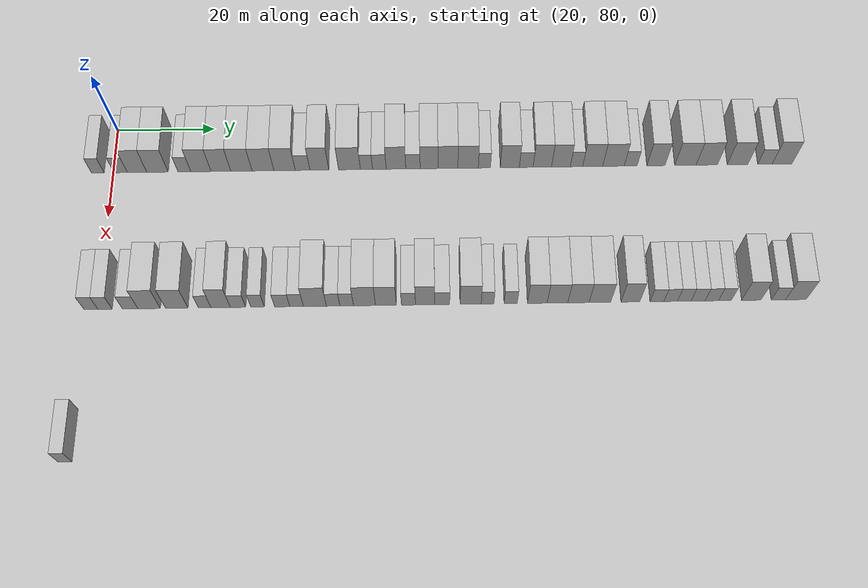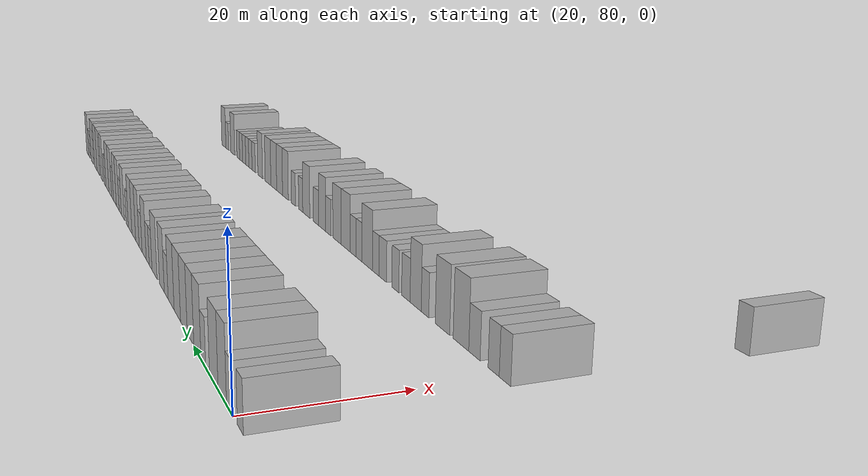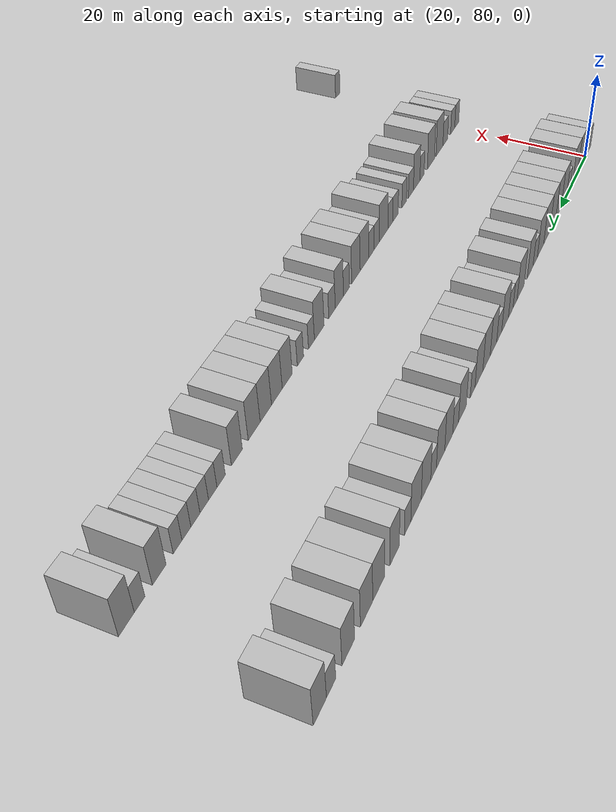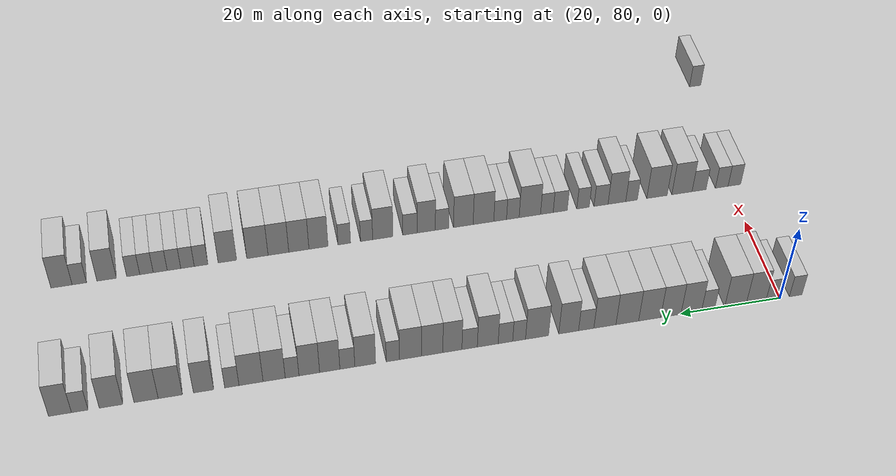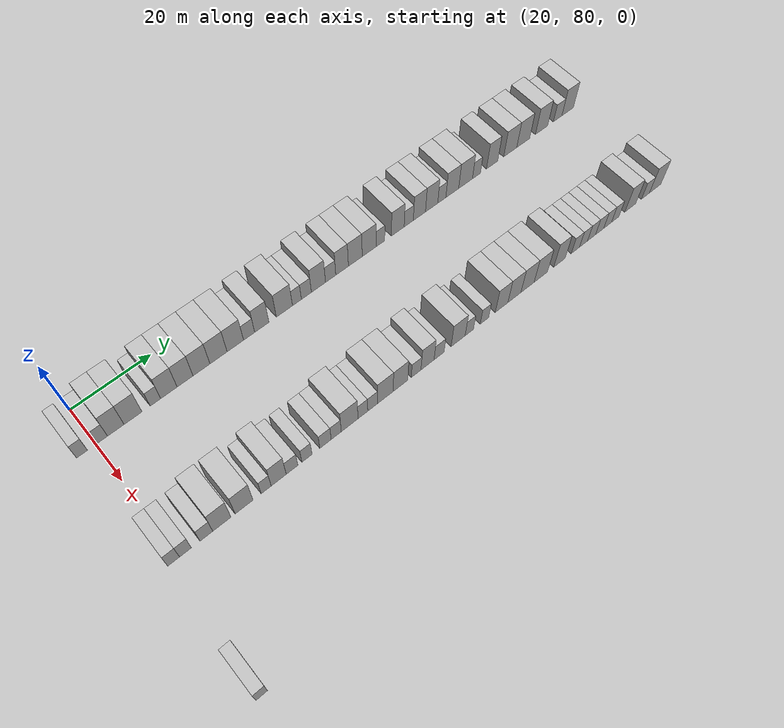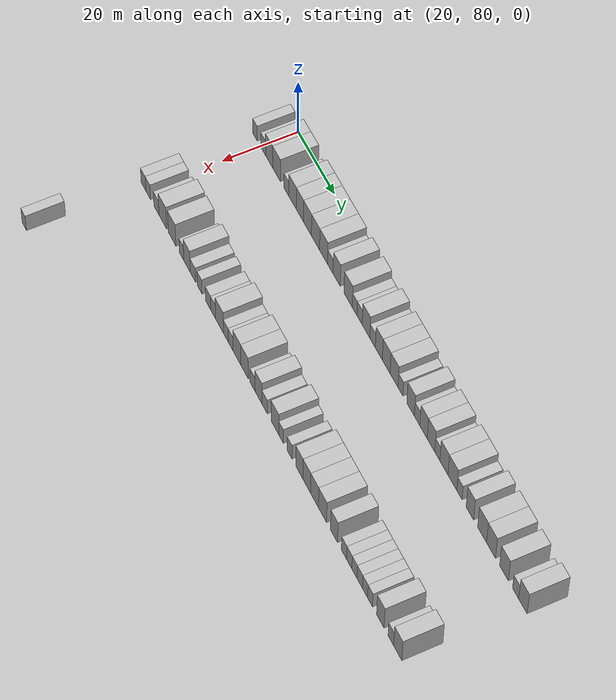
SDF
<sdf version="1.6">
 <world name="default">
  <model name="building_128">
   <static>1</static>
   <pose>25.0000 76.8793 0 0.000000 0.000000 0.000000</pose>
   <link name="link">
    <pose>0 0 3.00 0 0 0</pose>
    <collision name="collision"><geometry><box><size>10.0000 2.5659 6.0000</size></box></geometry></collision>
    <visual name="visual">
     <cast_shadows>0</cast_shadows>
     <geometry><box><size>10.0000 2.5659 6.0000</size></box></geometry>
     <material>
      <script>
       <uri>model://HANNAS_wall/materials/scripts</uri>
       <uri>model://HANNAS_wall/materials/textures</uri>
       <name>vrc/HANNAS_wall</name>
      </script>
     </material>
    </visual>
   </link>
  </model>
  <model name="building_129">
   <static>1</static>
   <pose>25.0000 81.5273 0 0.000000 0.000000 0.000000</pose>
   <link name="link">
    <pose>0 0 3.00 0 0 0</pose>
    <collision name="collision"><geometry><box><size>10.0000 2.7301 6.0000</size></box></geometry></collision>
    <visual name="visual">
     <cast_shadows>0</cast_shadows>
     <geometry><box><size>10.0000 2.7301 6.0000</size></box></geometry>
     <material>
      <script>
       <uri>model://HANNAS_wall/materials/scripts</uri>
       <uri>model://HANNAS_wall/materials/textures</uri>
       <name>vrc/HANNAS_wall</name>
      </script>
     </material>
    </visual>
   </link>
  </model>
  <model name="building_130">
   <static>1</static>
   <pose>25.0000 84.8800 0 0.000000 0.000000 0.000000</pose>
   <link name="link">
    <pose>0 0 4.50 0 0 0</pose>
    <collision name="collision"><geometry><box><size>10.0000 3.9753 9.0000</size></box></geometry></collision>
    <visual name="visual">
     <cast_shadows>0</cast_shadows>
     <geometry><box><size>10.0000 3.9753 9.0000</size></box></geometry>
     <material>
      <script>
       <uri>model://HANNAS_wall/materials/scripts</uri>
       <uri>model://HANNAS_wall/materials/textures</uri>
       <name>vrc/HANNAS_wall</name>
      </script>
     </material>
    </visual>
   </link>
  </model>
  <model name="building_131">
   <static>1</static>
   <pose>25.0000 89.0456 0 0.000000 0.000000 0.000000</pose>
   <link name="link">
    <pose>0 0 4.50 0 0 0</pose>
    <collision name="collision"><geometry><box><size>10.0000 4.3560 9.0000</size></box></geometry></collision>
    <visual name="visual">
     <cast_shadows>0</cast_shadows>
     <geometry><box><size>10.0000 4.3560 9.0000</size></box></geometry>
     <material>
      <script>
       <uri>model://HANNAS_wall/materials/scripts</uri>
       <uri>model://HANNAS_wall/materials/textures</uri>
       <name>vrc/HANNAS_wall</name>
      </script>
     </material>
    </visual>
   </link>
  </model>
  <model name="building_132">
   <static>1</static>
   <pose>25.0000 94.5323 0 0.000000 0.000000 0.000000</pose>
   <link name="link">
    <pose>0 0 3.00 0 0 0</pose>
    <collision name="collision"><geometry><box><size>10.0000 2.6174 6.0000</size></box></geometry></collision>
    <visual name="visual">
     <cast_shadows>0</cast_shadows>
     <geometry><box><size>10.0000 2.6174 6.0000</size></box></geometry>
     <material>
      <script>
       <uri>model://HANNAS_wall/materials/scripts</uri>
       <uri>model://HANNAS_wall/materials/textures</uri>
       <name>vrc/HANNAS_wall</name>
      </script>
     </material>
    </visual>
   </link>
  </model>
  <model name="building_133">
   <static>1</static>
   <pose>25.0000 97.8981 0 0.000000 0.000000 0.000000</pose>
   <link name="link">
    <pose>0 0 4.50 0 0 0</pose>
    <collision name="collision"><geometry><box><size>10.0000 4.1141 9.0000</size></box></geometry></collision>
    <visual name="visual">
     <cast_shadows>0</cast_shadows>
     <geometry><box><size>10.0000 4.1141 9.0000</size></box></geometry>
     <material>
      <script>
       <uri>model://HANNAS_wall/materials/scripts</uri>
       <uri>model://HANNAS_wall/materials/textures</uri>
       <name>vrc/HANNAS_wall</name>
      </script>
     </material>
    </visual>
   </link>
  </model>
  <model name="building_134">
   <static>1</static>
   <pose>25.0000 101.9695 0 0.000000 0.000000 0.000000</pose>
   <link name="link">
    <pose>0 0 4.50 0 0 0</pose>
    <collision name="collision"><geometry><box><size>10.0000 4.0288 9.0000</size></box></geometry></collision>
    <visual name="visual">
     <cast_shadows>0</cast_shadows>
     <geometry><box><size>10.0000 4.0288 9.0000</size></box></geometry>
     <material>
      <script>
       <uri>model://HANNAS_wall/materials/scripts</uri>
       <uri>model://HANNAS_wall/materials/textures</uri>
       <name>vrc/HANNAS_wall</name>
      </script>
     </material>
    </visual>
   </link>
  </model>
  <model name="building_135">
   <static>1</static>
   <pose>25.0000 106.1614 0 0.000000 0.000000 0.000000</pose>
   <link name="link">
    <pose>0 0 4.50 0 0 0</pose>
    <collision name="collision"><geometry><box><size>10.0000 4.3549 9.0000</size></box></geometry></collision>
    <visual name="visual">
     <cast_shadows>0</cast_shadows>
     <geometry><box><size>10.0000 4.3549 9.0000</size></box></geometry>
     <material>
      <script>
       <uri>model://HANNAS_wall/materials/scripts</uri>
       <uri>model://HANNAS_wall/materials/textures</uri>
       <name>vrc/HANNAS_wall</name>
      </script>
     </material>
    </visual>
   </link>
  </model>
  <model name="building_136">
   <static>1</static>
   <pose>25.0000 110.5706 0 0.000000 0.000000 0.000000</pose>
   <link name="link">
    <pose>0 0 4.50 0 0 0</pose>
    <collision name="collision"><geometry><box><size>10.0000 4.4637 9.0000</size></box></geometry></collision>
    <visual name="visual">
     <cast_shadows>0</cast_shadows>
     <geometry><box><size>10.0000 4.4637 9.0000</size></box></geometry>
     <material>
      <script>
       <uri>model://HANNAS_wall/materials/scripts</uri>
       <uri>model://HANNAS_wall/materials/textures</uri>
       <name>vrc/HANNAS_wall</name>
      </script>
     </material>
    </visual>
   </link>
  </model>
  <model name="building_137">
   <static>1</static>
   <pose>25.0000 114.9751 0 0.000000 0.000000 0.000000</pose>
   <link name="link">
    <pose>0 0 4.50 0 0 0</pose>
    <collision name="collision"><geometry><box><size>10.0000 4.3452 9.0000</size></box></geometry></collision>
    <visual name="visual">
     <cast_shadows>0</cast_shadows>
     <geometry><box><size>10.0000 4.3452 9.0000</size></box></geometry>
     <material>
      <script>
       <uri>model://HANNAS_wall/materials/scripts</uri>
       <uri>model://HANNAS_wall/materials/textures</uri>
       <name>vrc/HANNAS_wall</name>
      </script>
     </material>
    </visual>
   </link>
  </model>
  <model name="building_138">
   <static>1</static>
   <pose>25.0000 118.6404 0 0.000000 0.000000 0.000000</pose>
   <link name="link">
    <pose>0 0 3.00 0 0 0</pose>
    <collision name="collision"><geometry><box><size>10.0000 2.9855 6.0000</size></box></geometry></collision>
    <visual name="visual">
     <cast_shadows>0</cast_shadows>
     <geometry><box><size>10.0000 2.9855 6.0000</size></box></geometry>
     <material>
      <script>
       <uri>model://HANNAS_wall/materials/scripts</uri>
       <uri>model://HANNAS_wall/materials/textures</uri>
       <name>vrc/HANNAS_wall</name>
      </script>
     </material>
    </visual>
   </link>
  </model>
  <model name="building_139">
   <static>1</static>
   <pose>25.0000 122.0575 0 0.000000 0.000000 0.000000</pose>
   <link name="link">
    <pose>0 0 4.50 0 0 0</pose>
    <collision name="collision"><geometry><box><size>10.0000 3.8487 9.0000</size></box></geometry></collision>
    <visual name="visual">
     <cast_shadows>0</cast_shadows>
     <geometry><box><size>10.0000 3.8487 9.0000</size></box></geometry>
     <material>
      <script>
       <uri>model://HANNAS_wall/materials/scripts</uri>
       <uri>model://HANNAS_wall/materials/textures</uri>
       <name>vrc/HANNAS_wall</name>
      </script>
     </material>
    </visual>
   </link>
  </model>
  <model name="building_140">
   <static>1</static>
   <pose>25.0000 128.2081 0 0.000000 0.000000 0.000000</pose>
   <link name="link">
    <pose>0 0 4.50 0 0 0</pose>
    <collision name="collision"><geometry><box><size>10.0000 4.4526 9.0000</size></box></geometry></collision>
    <visual name="visual">
     <cast_shadows>0</cast_shadows>
     <geometry><box><size>10.0000 4.4526 9.0000</size></box></geometry>
     <material>
      <script>
       <uri>model://HANNAS_wall/materials/scripts</uri>
       <uri>model://HANNAS_wall/materials/textures</uri>
       <name>vrc/HANNAS_wall</name>
      </script>
     </material>
    </visual>
   </link>
  </model>
  <model name="building_141">
   <static>1</static>
   <pose>25.0000 131.6753 0 0.000000 0.000000 0.000000</pose>
   <link name="link">
    <pose>0 0 3.00 0 0 0</pose>
    <collision name="collision"><geometry><box><size>10.0000 2.4817 6.0000</size></box></geometry></collision>
    <visual name="visual">
     <cast_shadows>0</cast_shadows>
     <geometry><box><size>10.0000 2.4817 6.0000</size></box></geometry>
     <material>
      <script>
       <uri>model://HANNAS_wall/materials/scripts</uri>
       <uri>model://HANNAS_wall/materials/textures</uri>
       <name>vrc/HANNAS_wall</name>
      </script>
     </material>
    </visual>
   </link>
  </model>
  <model name="building_142">
   <static>1</static>
   <pose>25.0000 134.3153 0 0.000000 0.000000 0.000000</pose>
   <link name="link">
    <pose>0 0 3.00 0 0 0</pose>
    <collision name="collision"><geometry><box><size>10.0000 2.7984 6.0000</size></box></geometry></collision>
    <visual name="visual">
     <cast_shadows>0</cast_shadows>
     <geometry><box><size>10.0000 2.7984 6.0000</size></box></geometry>
     <material>
      <script>
       <uri>model://HANNAS_wall/materials/scripts</uri>
       <uri>model://HANNAS_wall/materials/textures</uri>
       <name>vrc/HANNAS_wall</name>
      </script>
     </material>
    </visual>
   </link>
  </model>
  <model name="building_143">
   <static>1</static>
   <pose>25.0000 137.7178 0 0.000000 0.000000 0.000000</pose>
   <link name="link">
    <pose>0 0 4.50 0 0 0</pose>
    <collision name="collision"><geometry><box><size>10.0000 4.0066 9.0000</size></box></geometry></collision>
    <visual name="visual">
     <cast_shadows>0</cast_shadows>
     <geometry><box><size>10.0000 4.0066 9.0000</size></box></geometry>
     <material>
      <script>
       <uri>model://HANNAS_wall/materials/scripts</uri>
       <uri>model://HANNAS_wall/materials/textures</uri>
       <name>vrc/HANNAS_wall</name>
      </script>
     </material>
    </visual>
   </link>
  </model>
  <model name="building_144">
   <static>1</static>
   <pose>25.0000 141.1899 0 0.000000 0.000000 0.000000</pose>
   <link name="link">
    <pose>0 0 3.00 0 0 0</pose>
    <collision name="collision"><geometry><box><size>10.0000 2.9375 6.0000</size></box></geometry></collision>
    <visual name="visual">
     <cast_shadows>0</cast_shadows>
     <geometry><box><size>10.0000 2.9375 6.0000</size></box></geometry>
     <material>
      <script>
       <uri>model://HANNAS_wall/materials/scripts</uri>
       <uri>model://HANNAS_wall/materials/textures</uri>
       <name>vrc/HANNAS_wall</name>
      </script>
     </material>
    </visual>
   </link>
  </model>
  <model name="building_145">
   <static>1</static>
   <pose>25.0000 144.4862 0 0.000000 0.000000 0.000000</pose>
   <link name="link">
    <pose>0 0 4.50 0 0 0</pose>
    <collision name="collision"><geometry><box><size>10.0000 3.6550 9.0000</size></box></geometry></collision>
    <visual name="visual">
     <cast_shadows>0</cast_shadows>
     <geometry><box><size>10.0000 3.6550 9.0000</size></box></geometry>
     <material>
      <script>
       <uri>model://HANNAS_wall/materials/scripts</uri>
       <uri>model://HANNAS_wall/materials/textures</uri>
       <name>vrc/HANNAS_wall</name>
      </script>
     </material>
    </visual>
   </link>
  </model>
  <model name="building_146">
   <static>1</static>
   <pose>25.0000 148.3375 0 0.000000 0.000000 0.000000</pose>
   <link name="link">
    <pose>0 0 4.50 0 0 0</pose>
    <collision name="collision"><geometry><box><size>10.0000 4.0475 9.0000</size></box></geometry></collision>
    <visual name="visual">
     <cast_shadows>0</cast_shadows>
     <geometry><box><size>10.0000 4.0475 9.0000</size></box></geometry>
     <material>
      <script>
       <uri>model://HANNAS_wall/materials/scripts</uri>
       <uri>model://HANNAS_wall/materials/textures</uri>
       <name>vrc/HANNAS_wall</name>
      </script>
     </material>
    </visual>
   </link>
  </model>
  <model name="building_147">
   <static>1</static>
   <pose>25.0000 152.4484 0 0.000000 0.000000 0.000000</pose>
   <link name="link">
    <pose>0 0 4.50 0 0 0</pose>
    <collision name="collision"><geometry><box><size>10.0000 4.1743 9.0000</size></box></geometry></collision>
    <visual name="visual">
     <cast_shadows>0</cast_shadows>
     <geometry><box><size>10.0000 4.1743 9.0000</size></box></geometry>
     <material>
      <script>
       <uri>model://HANNAS_wall/materials/scripts</uri>
       <uri>model://HANNAS_wall/materials/textures</uri>
       <name>vrc/HANNAS_wall</name>
      </script>
     </material>
    </visual>
   </link>
  </model>
  <model name="building_148">
   <static>1</static>
   <pose>25.0000 155.7804 0 0.000000 0.000000 0.000000</pose>
   <link name="link">
    <pose>0 0 3.00 0 0 0</pose>
    <collision name="collision"><geometry><box><size>10.0000 2.4897 6.0000</size></box></geometry></collision>
    <visual name="visual">
     <cast_shadows>0</cast_shadows>
     <geometry><box><size>10.0000 2.4897 6.0000</size></box></geometry>
     <material>
      <script>
       <uri>model://HANNAS_wall/materials/scripts</uri>
       <uri>model://HANNAS_wall/materials/textures</uri>
       <name>vrc/HANNAS_wall</name>
      </script>
     </material>
    </visual>
   </link>
  </model>
  <model name="building_149">
   <static>1</static>
   <pose>25.0000 160.9747 0 0.000000 0.000000 0.000000</pose>
   <link name="link">
    <pose>0 0 4.50 0 0 0</pose>
    <collision name="collision"><geometry><box><size>10.0000 3.8990 9.0000</size></box></geometry></collision>
    <visual name="visual">
     <cast_shadows>0</cast_shadows>
     <geometry><box><size>10.0000 3.8990 9.0000</size></box></geometry>
     <material>
      <script>
       <uri>model://HANNAS_wall/materials/scripts</uri>
       <uri>model://HANNAS_wall/materials/textures</uri>
       <name>vrc/HANNAS_wall</name>
      </script>
     </material>
    </visual>
   </link>
  </model>
  <model name="building_150">
   <static>1</static>
   <pose>25.0000 164.3258 0 0.000000 0.000000 0.000000</pose>
   <link name="link">
    <pose>0 0 3.00 0 0 0</pose>
    <collision name="collision"><geometry><box><size>10.0000 2.8032 6.0000</size></box></geometry></collision>
    <visual name="visual">
     <cast_shadows>0</cast_shadows>
     <geometry><box><size>10.0000 2.8032 6.0000</size></box></geometry>
     <material>
      <script>
       <uri>model://HANNAS_wall/materials/scripts</uri>
       <uri>model://HANNAS_wall/materials/textures</uri>
       <name>vrc/HANNAS_wall</name>
      </script>
     </material>
    </visual>
   </link>
  </model>
  <model name="building_151">
   <static>1</static>
   <pose>25.0000 167.6176 0 0.000000 0.000000 0.000000</pose>
   <link name="link">
    <pose>0 0 4.50 0 0 0</pose>
    <collision name="collision"><geometry><box><size>10.0000 3.7804 9.0000</size></box></geometry></collision>
    <visual name="visual">
     <cast_shadows>0</cast_shadows>
     <geometry><box><size>10.0000 3.7804 9.0000</size></box></geometry>
     <material>
      <script>
       <uri>model://HANNAS_wall/materials/scripts</uri>
       <uri>model://HANNAS_wall/materials/textures</uri>
       <name>vrc/HANNAS_wall</name>
      </script>
     </material>
    </visual>
   </link>
  </model>
  <model name="building_152">
   <static>1</static>
   <pose>25.0000 171.4290 0 0.000000 0.000000 0.000000</pose>
   <link name="link">
    <pose>0 0 4.50 0 0 0</pose>
    <collision name="collision"><geometry><box><size>10.0000 3.8425 9.0000</size></box></geometry></collision>
    <visual name="visual">
     <cast_shadows>0</cast_shadows>
     <geometry><box><size>10.0000 3.8425 9.0000</size></box></geometry>
     <material>
      <script>
       <uri>model://HANNAS_wall/materials/scripts</uri>
       <uri>model://HANNAS_wall/materials/textures</uri>
       <name>vrc/HANNAS_wall</name>
      </script>
     </material>
    </visual>
   </link>
  </model>
  <model name="building_153">
   <static>1</static>
   <pose>25.0000 174.6222 0 0.000000 0.000000 0.000000</pose>
   <link name="link">
    <pose>0 0 3.00 0 0 0</pose>
    <collision name="collision"><geometry><box><size>10.0000 2.5440 6.0000</size></box></geometry></collision>
    <visual name="visual">
     <cast_shadows>0</cast_shadows>
     <geometry><box><size>10.0000 2.5440 6.0000</size></box></geometry>
     <material>
      <script>
       <uri>model://HANNAS_wall/materials/scripts</uri>
       <uri>model://HANNAS_wall/materials/textures</uri>
       <name>vrc/HANNAS_wall</name>
      </script>
     </material>
    </visual>
   </link>
  </model>
  <model name="building_154">
   <static>1</static>
   <pose>25.0000 177.9421 0 0.000000 0.000000 0.000000</pose>
   <link name="link">
    <pose>0 0 4.50 0 0 0</pose>
    <collision name="collision"><geometry><box><size>10.0000 4.0957 9.0000</size></box></geometry></collision>
    <visual name="visual">
     <cast_shadows>0</cast_shadows>
     <geometry><box><size>10.0000 4.0957 9.0000</size></box></geometry>
     <material>
      <script>
       <uri>model://HANNAS_wall/materials/scripts</uri>
       <uri>model://HANNAS_wall/materials/textures</uri>
       <name>vrc/HANNAS_wall</name>
      </script>
     </material>
    </visual>
   </link>
  </model>
  <model name="building_155">
   <static>1</static>
   <pose>25.0000 182.2026 0 0.000000 0.000000 0.000000</pose>
   <link name="link">
    <pose>0 0 4.50 0 0 0</pose>
    <collision name="collision"><geometry><box><size>10.0000 4.4254 9.0000</size></box></geometry></collision>
    <visual name="visual">
     <cast_shadows>0</cast_shadows>
     <geometry><box><size>10.0000 4.4254 9.0000</size></box></geometry>
     <material>
      <script>
       <uri>model://HANNAS_wall/materials/scripts</uri>
       <uri>model://HANNAS_wall/materials/textures</uri>
       <name>vrc/HANNAS_wall</name>
      </script>
     </material>
    </visual>
   </link>
  </model>
  <model name="building_156">
   <static>1</static>
   <pose>25.0000 185.7323 0 0.000000 0.000000 0.000000</pose>
   <link name="link">
    <pose>0 0 3.00 0 0 0</pose>
    <collision name="collision"><geometry><box><size>10.0000 2.6340 6.0000</size></box></geometry></collision>
    <visual name="visual">
     <cast_shadows>0</cast_shadows>
     <geometry><box><size>10.0000 2.6340 6.0000</size></box></geometry>
     <material>
      <script>
       <uri>model://HANNAS_wall/materials/scripts</uri>
       <uri>model://HANNAS_wall/materials/textures</uri>
       <name>vrc/HANNAS_wall</name>
      </script>
     </material>
    </visual>
   </link>
  </model>
  <model name="building_157">
   <static>1</static>
   <pose>25.0000 190.9042 0 0.000000 0.000000 0.000000</pose>
   <link name="link">
    <pose>0 0 4.50 0 0 0</pose>
    <collision name="collision"><geometry><box><size>10.0000 3.7099 9.0000</size></box></geometry></collision>
    <visual name="visual">
     <cast_shadows>0</cast_shadows>
     <geometry><box><size>10.0000 3.7099 9.0000</size></box></geometry>
     <material>
      <script>
       <uri>model://HANNAS_wall/materials/scripts</uri>
       <uri>model://HANNAS_wall/materials/textures</uri>
       <name>vrc/HANNAS_wall</name>
      </script>
     </material>
    </visual>
   </link>
  </model>
  <model name="building_158">
   <static>1</static>
   <pose>25.0000 196.9565 0 0.000000 0.000000 0.000000</pose>
   <link name="link">
    <pose>0 0 4.50 0 0 0</pose>
    <collision name="collision"><geometry><box><size>10.0000 4.3945 9.0000</size></box></geometry></collision>
    <visual name="visual">
     <cast_shadows>0</cast_shadows>
     <geometry><box><size>10.0000 4.3945 9.0000</size></box></geometry>
     <material>
      <script>
       <uri>model://HANNAS_wall/materials/scripts</uri>
       <uri>model://HANNAS_wall/materials/textures</uri>
       <name>vrc/HANNAS_wall</name>
      </script>
     </material>
    </visual>
   </link>
  </model>
  <model name="building_159">
   <static>1</static>
   <pose>25.0000 201.3449 0 0.000000 0.000000 0.000000</pose>
   <link name="link">
    <pose>0 0 4.50 0 0 0</pose>
    <collision name="collision"><geometry><box><size>10.0000 4.3824 9.0000</size></box></geometry></collision>
    <visual name="visual">
     <cast_shadows>0</cast_shadows>
     <geometry><box><size>10.0000 4.3824 9.0000</size></box></geometry>
     <material>
      <script>
       <uri>model://HANNAS_wall/materials/scripts</uri>
       <uri>model://HANNAS_wall/materials/textures</uri>
       <name>vrc/HANNAS_wall</name>
      </script>
     </material>
    </visual>
   </link>
  </model>
  <model name="building_160">
   <static>1</static>
   <pose>25.0000 207.6597 0 0.000000 0.000000 0.000000</pose>
   <link name="link">
    <pose>0 0 4.50 0 0 0</pose>
    <collision name="collision"><geometry><box><size>10.0000 4.2472 9.0000</size></box></geometry></collision>
    <visual name="visual">
     <cast_shadows>0</cast_shadows>
     <geometry><box><size>10.0000 4.2472 9.0000</size></box></geometry>
     <material>
      <script>
       <uri>model://HANNAS_wall/materials/scripts</uri>
       <uri>model://HANNAS_wall/materials/textures</uri>
       <name>vrc/HANNAS_wall</name>
      </script>
     </material>
    </visual>
   </link>
  </model>
  <model name="building_161">
   <static>1</static>
   <pose>25.0000 213.2657 0 0.000000 0.000000 0.000000</pose>
   <link name="link">
    <pose>0 0 3.00 0 0 0</pose>
    <collision name="collision"><geometry><box><size>10.0000 2.9649 6.0000</size></box></geometry></collision>
    <visual name="visual">
     <cast_shadows>0</cast_shadows>
     <geometry><box><size>10.0000 2.9649 6.0000</size></box></geometry>
     <material>
      <script>
       <uri>model://HANNAS_wall/materials/scripts</uri>
       <uri>model://HANNAS_wall/materials/textures</uri>
       <name>vrc/HANNAS_wall</name>
      </script>
     </material>
    </visual>
   </link>
  </model>
  <model name="building_162">
   <static>1</static>
   <pose>25.0000 216.7878 0 0.000000 0.000000 0.000000</pose>
   <link name="link">
    <pose>0 0 4.50 0 0 0</pose>
    <collision name="collision"><geometry><box><size>10.0000 4.0794 9.0000</size></box></geometry></collision>
    <visual name="visual">
     <cast_shadows>0</cast_shadows>
     <geometry><box><size>10.0000 4.0794 9.0000</size></box></geometry>
     <material>
      <script>
       <uri>model://HANNAS_wall/materials/scripts</uri>
       <uri>model://HANNAS_wall/materials/textures</uri>
       <name>vrc/HANNAS_wall</name>
      </script>
     </material>
    </visual>
   </link>
  </model>
  <model name="building_362">
   <static>1</static>
   <pose>55.0000 78.7407 0 0.000000 0.000000 0.000000</pose>
   <link name="link">
    <pose>0 0 3.00 0 0 0</pose>
    <collision name="collision"><geometry><box><size>10.0000 2.7139 6.0000</size></box></geometry></collision>
    <visual name="visual">
     <cast_shadows>0</cast_shadows>
     <geometry><box><size>10.0000 2.7139 6.0000</size></box></geometry>
     <material>
      <script>
       <uri>model://HANNAS_wall/materials/scripts</uri>
       <uri>model://HANNAS_wall/materials/textures</uri>
       <name>vrc/HANNAS_wall</name>
      </script>
     </material>
    </visual>
   </link>
  </model>
  <model name="building_363">
   <static>1</static>
   <pose>55.0000 81.4640 0 0.000000 0.000000 0.000000</pose>
   <link name="link">
    <pose>0 0 3.00 0 0 0</pose>
    <collision name="collision"><geometry><box><size>10.0000 2.7326 6.0000</size></box></geometry></collision>
    <visual name="visual">
     <cast_shadows>0</cast_shadows>
     <geometry><box><size>10.0000 2.7326 6.0000</size></box></geometry>
     <material>
      <script>
       <uri>model://HANNAS_wall/materials/scripts</uri>
       <uri>model://HANNAS_wall/materials/textures</uri>
       <name>vrc/HANNAS_wall</name>
      </script>
     </material>
    </visual>
   </link>
  </model>
  <model name="building_364">
   <static>1</static>
   <pose>55.0000 86.3299 0 0.000000 0.000000 0.000000</pose>
   <link name="link">
    <pose>0 0 3.00 0 0 0</pose>
    <collision name="collision"><geometry><box><size>10.0000 2.9991 6.0000</size></box></geometry></collision>
    <visual name="visual">
     <cast_shadows>0</cast_shadows>
     <geometry><box><size>10.0000 2.9991 6.0000</size></box></geometry>
     <material>
      <script>
       <uri>model://HANNAS_wall/materials/scripts</uri>
       <uri>model://HANNAS_wall/materials/textures</uri>
       <name>vrc/HANNAS_wall</name>
      </script>
     </material>
    </visual>
   </link>
  </model>
  <model name="building_365">
   <static>1</static>
   <pose>55.0000 89.9924 0 0.000000 0.000000 0.000000</pose>
   <link name="link">
    <pose>0 0 4.50 0 0 0</pose>
    <collision name="collision"><geometry><box><size>10.0000 4.3259 9.0000</size></box></geometry></collision>
    <visual name="visual">
     <cast_shadows>0</cast_shadows>
     <geometry><box><size>10.0000 4.3259 9.0000</size></box></geometry>
     <material>
      <script>
       <uri>model://HANNAS_wall/materials/scripts</uri>
       <uri>model://HANNAS_wall/materials/textures</uri>
       <name>vrc/HANNAS_wall</name>
      </script>
     </material>
    </visual>
   </link>
  </model>
  <model name="building_366">
   <static>1</static>
   <pose>55.0000 95.3221 0 0.000000 0.000000 0.000000</pose>
   <link name="link">
    <pose>0 0 4.50 0 0 0</pose>
    <collision name="collision"><geometry><box><size>10.0000 4.3336 9.0000</size></box></geometry></collision>
    <visual name="visual">
     <cast_shadows>0</cast_shadows>
     <geometry><box><size>10.0000 4.3336 9.0000</size></box></geometry>
     <material>
      <script>
       <uri>model://HANNAS_wall/materials/scripts</uri>
       <uri>model://HANNAS_wall/materials/textures</uri>
       <name>vrc/HANNAS_wall</name>
      </script>
     </material>
    </visual>
   </link>
  </model>
  <model name="building_367">
   <static>1</static>
   <pose>55.0000 100.7217 0 0.000000 0.000000 0.000000</pose>
   <link name="link">
    <pose>0 0 3.00 0 0 0</pose>
    <collision name="collision"><geometry><box><size>10.0000 2.4655 6.0000</size></box></geometry></collision>
    <visual name="visual">
     <cast_shadows>0</cast_shadows>
     <geometry><box><size>10.0000 2.4655 6.0000</size></box></geometry>
     <material>
      <script>
       <uri>model://HANNAS_wall/materials/scripts</uri>
       <uri>model://HANNAS_wall/materials/textures</uri>
       <name>vrc/HANNAS_wall</name>
      </script>
     </material>
    </visual>
   </link>
  </model>
  <model name="building_368">
   <static>1</static>
   <pose>55.0000 103.8263 0 0.000000 0.000000 0.000000</pose>
   <link name="link">
    <pose>0 0 4.50 0 0 0</pose>
    <collision name="collision"><geometry><box><size>10.0000 3.7438 9.0000</size></box></geometry></collision>
    <visual name="visual">
     <cast_shadows>0</cast_shadows>
     <geometry><box><size>10.0000 3.7438 9.0000</size></box></geometry>
     <material>
      <script>
       <uri>model://HANNAS_wall/materials/scripts</uri>
       <uri>model://HANNAS_wall/materials/textures</uri>
       <name>vrc/HANNAS_wall</name>
      </script>
     </material>
    </visual>
   </link>
  </model>
  <model name="building_369">
   <static>1</static>
   <pose>55.0000 107.1765 0 0.000000 0.000000 0.000000</pose>
   <link name="link">
    <pose>0 0 3.00 0 0 0</pose>
    <collision name="collision"><geometry><box><size>10.0000 2.9568 6.0000</size></box></geometry></collision>
    <visual name="visual">
     <cast_shadows>0</cast_shadows>
     <geometry><box><size>10.0000 2.9568 6.0000</size></box></geometry>
     <material>
      <script>
       <uri>model://HANNAS_wall/materials/scripts</uri>
       <uri>model://HANNAS_wall/materials/textures</uri>
       <name>vrc/HANNAS_wall</name>
      </script>
     </material>
    </visual>
   </link>
  </model>
  <model name="building_370">
   <static>1</static>
   <pose>55.0000 110.9567 0 0.000000 0.000000 0.000000</pose>
   <link name="link">
    <pose>0 0 3.00 0 0 0</pose>
    <collision name="collision"><geometry><box><size>10.0000 2.6036 6.0000</size></box></geometry></collision>
    <visual name="visual">
     <cast_shadows>0</cast_shadows>
     <geometry><box><size>10.0000 2.6036 6.0000</size></box></geometry>
     <material>
      <script>
       <uri>model://HANNAS_wall/materials/scripts</uri>
       <uri>model://HANNAS_wall/materials/textures</uri>
       <name>vrc/HANNAS_wall</name>
      </script>
     </material>
    </visual>
   </link>
  </model>
  <model name="building_371">
   <static>1</static>
   <pose>55.0000 115.7283 0 0.000000 0.000000 0.000000</pose>
   <link name="link">
    <pose>0 0 3.00 0 0 0</pose>
    <collision name="collision"><geometry><box><size>10.0000 2.9396 6.0000</size></box></geometry></collision>
    <visual name="visual">
     <cast_shadows>0</cast_shadows>
     <geometry><box><size>10.0000 2.9396 6.0000</size></box></geometry>
     <material>
      <script>
       <uri>model://HANNAS_wall/materials/scripts</uri>
       <uri>model://HANNAS_wall/materials/textures</uri>
       <name>vrc/HANNAS_wall</name>
      </script>
     </material>
    </visual>
   </link>
  </model>
  <model name="building_372">
   <static>1</static>
   <pose>55.0000 118.5206 0 0.000000 0.000000 0.000000</pose>
   <link name="link">
    <pose>0 0 3.00 0 0 0</pose>
    <collision name="collision"><geometry><box><size>10.0000 2.6449 6.0000</size></box></geometry></collision>
    <visual name="visual">
     <cast_shadows>0</cast_shadows>
     <geometry><box><size>10.0000 2.6449 6.0000</size></box></geometry>
     <material>
      <script>
       <uri>model://HANNAS_wall/materials/scripts</uri>
       <uri>model://HANNAS_wall/materials/textures</uri>
       <name>vrc/HANNAS_wall</name>
      </script>
     </material>
    </visual>
   </link>
  </model>
  <model name="building_373">
   <static>1</static>
   <pose>55.0000 122.0625 0 0.000000 0.000000 0.000000</pose>
   <link name="link">
    <pose>0 0 4.50 0 0 0</pose>
    <collision name="collision"><geometry><box><size>10.0000 4.4389 9.0000</size></box></geometry></collision>
    <visual name="visual">
     <cast_shadows>0</cast_shadows>
     <geometry><box><size>10.0000 4.4389 9.0000</size></box></geometry>
     <material>
      <script>
       <uri>model://HANNAS_wall/materials/scripts</uri>
       <uri>model://HANNAS_wall/materials/textures</uri>
       <name>vrc/HANNAS_wall</name>
      </script>
     </material>
    </visual>
   </link>
  </model>
  <model name="building_374">
   <static>1</static>
   <pose>55.0000 125.5887 0 0.000000 0.000000 0.000000</pose>
   <link name="link">
    <pose>0 0 3.00 0 0 0</pose>
    <collision name="collision"><geometry><box><size>10.0000 2.6134 6.0000</size></box></geometry></collision>
    <visual name="visual">
     <cast_shadows>0</cast_shadows>
     <geometry><box><size>10.0000 2.6134 6.0000</size></box></geometry>
     <material>
      <script>
       <uri>model://HANNAS_wall/materials/scripts</uri>
       <uri>model://HANNAS_wall/materials/textures</uri>
       <name>vrc/HANNAS_wall</name>
      </script>
     </material>
    </visual>
   </link>
  </model>
  <model name="building_375">
   <static>1</static>
   <pose>55.0000 128.2142 0 0.000000 0.000000 0.000000</pose>
   <link name="link">
    <pose>0 0 3.00 0 0 0</pose>
    <collision name="collision"><geometry><box><size>10.0000 2.6376 6.0000</size></box></geometry></collision>
    <visual name="visual">
     <cast_shadows>0</cast_shadows>
     <geometry><box><size>10.0000 2.6376 6.0000</size></box></geometry>
     <material>
      <script>
       <uri>model://HANNAS_wall/materials/scripts</uri>
       <uri>model://HANNAS_wall/materials/textures</uri>
       <name>vrc/HANNAS_wall</name>
      </script>
     </material>
    </visual>
   </link>
  </model>
  <model name="building_376">
   <static>1</static>
   <pose>55.0000 131.6616 0 0.000000 0.000000 0.000000</pose>
   <link name="link">
    <pose>0 0 4.50 0 0 0</pose>
    <collision name="collision"><geometry><box><size>10.0000 4.2573 9.0000</size></box></geometry></collision>
    <visual name="visual">
     <cast_shadows>0</cast_shadows>
     <geometry><box><size>10.0000 4.2573 9.0000</size></box></geometry>
     <material>
      <script>
       <uri>model://HANNAS_wall/materials/scripts</uri>
       <uri>model://HANNAS_wall/materials/textures</uri>
       <name>vrc/HANNAS_wall</name>
      </script>
     </material>
    </visual>
   </link>
  </model>
  <model name="building_377">
   <static>1</static>
   <pose>55.0000 135.8083 0 0.000000 0.000000 0.000000</pose>
   <link name="link">
    <pose>0 0 4.50 0 0 0</pose>
    <collision name="collision"><geometry><box><size>10.0000 4.0360 9.0000</size></box></geometry></collision>
    <visual name="visual">
     <cast_shadows>0</cast_shadows>
     <geometry><box><size>10.0000 4.0360 9.0000</size></box></geometry>
     <material>
      <script>
       <uri>model://HANNAS_wall/materials/scripts</uri>
       <uri>model://HANNAS_wall/materials/textures</uri>
       <name>vrc/HANNAS_wall</name>
      </script>
     </material>
    </visual>
   </link>
  </model>
  <model name="building_378">
   <static>1</static>
   <pose>55.0000 140.1856 0 0.000000 0.000000 0.000000</pose>
   <link name="link">
    <pose>0 0 3.00 0 0 0</pose>
    <collision name="collision"><geometry><box><size>10.0000 2.7187 6.0000</size></box></geometry></collision>
    <visual name="visual">
     <cast_shadows>0</cast_shadows>
     <geometry><box><size>10.0000 2.7187 6.0000</size></box></geometry>
     <material>
      <script>
       <uri>model://HANNAS_wall/materials/scripts</uri>
       <uri>model://HANNAS_wall/materials/textures</uri>
       <name>vrc/HANNAS_wall</name>
      </script>
     </material>
    </visual>
   </link>
  </model>
  <model name="building_379">
   <static>1</static>
   <pose>55.0000 143.4065 0 0.000000 0.000000 0.000000</pose>
   <link name="link">
    <pose>0 0 4.50 0 0 0</pose>
    <collision name="collision"><geometry><box><size>10.0000 3.7229 9.0000</size></box></geometry></collision>
    <visual name="visual">
     <cast_shadows>0</cast_shadows>
     <geometry><box><size>10.0000 3.7229 9.0000</size></box></geometry>
     <material>
      <script>
       <uri>model://HANNAS_wall/materials/scripts</uri>
       <uri>model://HANNAS_wall/materials/textures</uri>
       <name>vrc/HANNAS_wall</name>
      </script>
     </material>
    </visual>
   </link>
  </model>
  <model name="building_380">
   <static>1</static>
   <pose>55.0000 146.7139 0 0.000000 0.000000 0.000000</pose>
   <link name="link">
    <pose>0 0 3.00 0 0 0</pose>
    <collision name="collision"><geometry><box><size>10.0000 2.8919 6.0000</size></box></geometry></collision>
    <visual name="visual">
     <cast_shadows>0</cast_shadows>
     <geometry><box><size>10.0000 2.8919 6.0000</size></box></geometry>
     <material>
      <script>
       <uri>model://HANNAS_wall/materials/scripts</uri>
       <uri>model://HANNAS_wall/materials/textures</uri>
       <name>vrc/HANNAS_wall</name>
      </script>
     </material>
    </visual>
   </link>
  </model>
  <model name="building_381">
   <static>1</static>
   <pose>55.0000 152.2102 0 0.000000 0.000000 0.000000</pose>
   <link name="link">
    <pose>0 0 4.50 0 0 0</pose>
    <collision name="collision"><geometry><box><size>10.0000 4.1008 9.0000</size></box></geometry></collision>
    <visual name="visual">
     <cast_shadows>0</cast_shadows>
     <geometry><box><size>10.0000 4.1008 9.0000</size></box></geometry>
     <material>
      <script>
       <uri>model://HANNAS_wall/materials/scripts</uri>
       <uri>model://HANNAS_wall/materials/textures</uri>
       <name>vrc/HANNAS_wall</name>
      </script>
     </material>
    </visual>
   </link>
  </model>
  <model name="building_382">
   <static>1</static>
   <pose>55.0000 155.4904 0 0.000000 0.000000 0.000000</pose>
   <link name="link">
    <pose>0 0 3.00 0 0 0</pose>
    <collision name="collision"><geometry><box><size>10.0000 2.4596 6.0000</size></box></geometry></collision>
    <visual name="visual">
     <cast_shadows>0</cast_shadows>
     <geometry><box><size>10.0000 2.4596 6.0000</size></box></geometry>
     <material>
      <script>
       <uri>model://HANNAS_wall/materials/scripts</uri>
       <uri>model://HANNAS_wall/materials/textures</uri>
       <name>vrc/HANNAS_wall</name>
      </script>
     </material>
    </visual>
   </link>
  </model>
  <model name="building_383">
   <static>1</static>
   <pose>55.0000 159.9827 0 0.000000 0.000000 0.000000</pose>
   <link name="link">
    <pose>0 0 3.00 0 0 0</pose>
    <collision name="collision"><geometry><box><size>10.0000 2.5250 6.0000</size></box></geometry></collision>
    <visual name="visual">
     <cast_shadows>0</cast_shadows>
     <geometry><box><size>10.0000 2.5250 6.0000</size></box></geometry>
     <material>
      <script>
       <uri>model://HANNAS_wall/materials/scripts</uri>
       <uri>model://HANNAS_wall/materials/textures</uri>
       <name>vrc/HANNAS_wall</name>
      </script>
     </material>
    </visual>
   </link>
  </model>
  <model name="building_384">
   <static>1</static>
   <pose>55.0000 165.1538 0 0.000000 0.000000 0.000000</pose>
   <link name="link">
    <pose>0 0 4.50 0 0 0</pose>
    <collision name="collision"><geometry><box><size>10.0000 3.8172 9.0000</size></box></geometry></collision>
    <visual name="visual">
     <cast_shadows>0</cast_shadows>
     <geometry><box><size>10.0000 3.8172 9.0000</size></box></geometry>
     <material>
      <script>
       <uri>model://HANNAS_wall/materials/scripts</uri>
       <uri>model://HANNAS_wall/materials/textures</uri>
       <name>vrc/HANNAS_wall</name>
      </script>
     </material>
    </visual>
   </link>
  </model>
  <model name="building_385">
   <static>1</static>
   <pose>55.0000 169.0708 0 0.000000 0.000000 0.000000</pose>
   <link name="link">
    <pose>0 0 4.50 0 0 0</pose>
    <collision name="collision"><geometry><box><size>10.0000 4.0169 9.0000</size></box></geometry></collision>
    <visual name="visual">
     <cast_shadows>0</cast_shadows>
     <geometry><box><size>10.0000 4.0169 9.0000</size></box></geometry>
     <material>
      <script>
       <uri>model://HANNAS_wall/materials/scripts</uri>
       <uri>model://HANNAS_wall/materials/textures</uri>
       <name>vrc/HANNAS_wall</name>
      </script>
     </material>
    </visual>
   </link>
  </model>
  <model name="building_386">
   <static>1</static>
   <pose>55.0000 173.1386 0 0.000000 0.000000 0.000000</pose>
   <link name="link">
    <pose>0 0 4.50 0 0 0</pose>
    <collision name="collision"><geometry><box><size>10.0000 4.1186 9.0000</size></box></geometry></collision>
    <visual name="visual">
     <cast_shadows>0</cast_shadows>
     <geometry><box><size>10.0000 4.1186 9.0000</size></box></geometry>
     <material>
      <script>
       <uri>model://HANNAS_wall/materials/scripts</uri>
       <uri>model://HANNAS_wall/materials/textures</uri>
       <name>vrc/HANNAS_wall</name>
      </script>
     </material>
    </visual>
   </link>
  </model>
  <model name="building_387">
   <static>1</static>
   <pose>55.0000 177.3042 0 0.000000 0.000000 0.000000</pose>
   <link name="link">
    <pose>0 0 4.50 0 0 0</pose>
    <collision name="collision"><geometry><box><size>10.0000 4.2127 9.0000</size></box></geometry></collision>
    <visual name="visual">
     <cast_shadows>0</cast_shadows>
     <geometry><box><size>10.0000 4.2127 9.0000</size></box></geometry>
     <material>
      <script>
       <uri>model://HANNAS_wall/materials/scripts</uri>
       <uri>model://HANNAS_wall/materials/textures</uri>
       <name>vrc/HANNAS_wall</name>
      </script>
     </material>
    </visual>
   </link>
  </model>
  <model name="building_388">
   <static>1</static>
   <pose>55.0000 183.2357 0 0.000000 0.000000 0.000000</pose>
   <link name="link">
    <pose>0 0 4.50 0 0 0</pose>
    <collision name="collision"><geometry><box><size>10.0000 3.6503 9.0000</size></box></geometry></collision>
    <visual name="visual">
     <cast_shadows>0</cast_shadows>
     <geometry><box><size>10.0000 3.6503 9.0000</size></box></geometry>
     <material>
      <script>
       <uri>model://HANNAS_wall/materials/scripts</uri>
       <uri>model://HANNAS_wall/materials/textures</uri>
       <name>vrc/HANNAS_wall</name>
      </script>
     </material>
    </visual>
   </link>
  </model>
  <model name="building_389">
   <static>1</static>
   <pose>55.0000 188.3976 0 0.000000 0.000000 0.000000</pose>
   <link name="link">
    <pose>0 0 3.00 0 0 0</pose>
    <collision name="collision"><geometry><box><size>10.0000 2.6735 6.0000</size></box></geometry></collision>
    <visual name="visual">
     <cast_shadows>0</cast_shadows>
     <geometry><box><size>10.0000 2.6735 6.0000</size></box></geometry>
     <material>
      <script>
       <uri>model://HANNAS_wall/materials/scripts</uri>
       <uri>model://HANNAS_wall/materials/textures</uri>
       <name>vrc/HANNAS_wall</name>
      </script>
     </material>
    </visual>
   </link>
  </model>
  <model name="building_390">
   <static>1</static>
   <pose>55.0000 191.0544 0 0.000000 0.000000 0.000000</pose>
   <link name="link">
    <pose>0 0 3.00 0 0 0</pose>
    <collision name="collision"><geometry><box><size>10.0000 2.6401 6.0000</size></box></geometry></collision>
    <visual name="visual">
     <cast_shadows>0</cast_shadows>
     <geometry><box><size>10.0000 2.6401 6.0000</size></box></geometry>
     <material>
      <script>
       <uri>model://HANNAS_wall/materials/scripts</uri>
       <uri>model://HANNAS_wall/materials/textures</uri>
       <name>vrc/HANNAS_wall</name>
      </script>
     </material>
    </visual>
   </link>
  </model>
  <model name="building_391">
   <static>1</static>
   <pose>55.0000 193.6919 0 0.000000 0.000000 0.000000</pose>
   <link name="link">
    <pose>0 0 3.00 0 0 0</pose>
    <collision name="collision"><geometry><box><size>10.0000 2.6349 6.0000</size></box></geometry></collision>
    <visual name="visual">
     <cast_shadows>0</cast_shadows>
     <geometry><box><size>10.0000 2.6349 6.0000</size></box></geometry>
     <material>
      <script>
       <uri>model://HANNAS_wall/materials/scripts</uri>
       <uri>model://HANNAS_wall/materials/textures</uri>
       <name>vrc/HANNAS_wall</name>
      </script>
     </material>
    </visual>
   </link>
  </model>
  <model name="building_392">
   <static>1</static>
   <pose>55.0000 196.3743 0 0.000000 0.000000 0.000000</pose>
   <link name="link">
    <pose>0 0 3.00 0 0 0</pose>
    <collision name="collision"><geometry><box><size>10.0000 2.7299 6.0000</size></box></geometry></collision>
    <visual name="visual">
     <cast_shadows>0</cast_shadows>
     <geometry><box><size>10.0000 2.7299 6.0000</size></box></geometry>
     <material>
      <script>
       <uri>model://HANNAS_wall/materials/scripts</uri>
       <uri>model://HANNAS_wall/materials/textures</uri>
       <name>vrc/HANNAS_wall</name>
      </script>
     </material>
    </visual>
   </link>
  </model>
  <model name="building_393">
   <static>1</static>
   <pose>55.0000 199.0454 0 0.000000 0.000000 0.000000</pose>
   <link name="link">
    <pose>0 0 3.00 0 0 0</pose>
    <collision name="collision"><geometry><box><size>10.0000 2.6124 6.0000</size></box></geometry></collision>
    <visual name="visual">
     <cast_shadows>0</cast_shadows>
     <geometry><box><size>10.0000 2.6124 6.0000</size></box></geometry>
     <material>
      <script>
       <uri>model://HANNAS_wall/materials/scripts</uri>
       <uri>model://HANNAS_wall/materials/textures</uri>
       <name>vrc/HANNAS_wall</name>
      </script>
     </material>
    </visual>
   </link>
  </model>
  <model name="building_394">
   <static>1</static>
   <pose>55.0000 201.6136 0 0.000000 0.000000 0.000000</pose>
   <link name="link">
    <pose>0 0 3.00 0 0 0</pose>
    <collision name="collision"><geometry><box><size>10.0000 2.5241 6.0000</size></box></geometry></collision>
    <visual name="visual">
     <cast_shadows>0</cast_shadows>
     <geometry><box><size>10.0000 2.5241 6.0000</size></box></geometry>
     <material>
      <script>
       <uri>model://HANNAS_wall/materials/scripts</uri>
       <uri>model://HANNAS_wall/materials/textures</uri>
       <name>vrc/HANNAS_wall</name>
      </script>
     </material>
    </visual>
   </link>
  </model>
  <model name="building_395">
   <static>1</static>
   <pose>55.0000 206.7531 0 0.000000 0.000000 0.000000</pose>
   <link name="link">
    <pose>0 0 4.50 0 0 0</pose>
    <collision name="collision"><geometry><box><size>10.0000 3.7550 9.0000</size></box></geometry></collision>
    <visual name="visual">
     <cast_shadows>0</cast_shadows>
     <geometry><box><size>10.0000 3.7550 9.0000</size></box></geometry>
     <material>
      <script>
       <uri>model://HANNAS_wall/materials/scripts</uri>
       <uri>model://HANNAS_wall/materials/textures</uri>
       <name>vrc/HANNAS_wall</name>
      </script>
     </material>
    </visual>
   </link>
  </model>
  <model name="building_396">
   <static>1</static>
   <pose>55.0000 212.0113 0 0.000000 0.000000 0.000000</pose>
   <link name="link">
    <pose>0 0 3.00 0 0 0</pose>
    <collision name="collision"><geometry><box><size>10.0000 2.7614 6.0000</size></box></geometry></collision>
    <visual name="visual">
     <cast_shadows>0</cast_shadows>
     <geometry><box><size>10.0000 2.7614 6.0000</size></box></geometry>
     <material>
      <script>
       <uri>model://HANNAS_wall/materials/scripts</uri>
       <uri>model://HANNAS_wall/materials/textures</uri>
       <name>vrc/HANNAS_wall</name>
      </script>
     </material>
    </visual>
   </link>
  </model>
  <model name="building_397">
   <static>1</static>
   <pose>55.0000 215.4191 0 0.000000 0.000000 0.000000</pose>
   <link name="link">
    <pose>0 0 4.50 0 0 0</pose>
    <collision name="collision"><geometry><box><size>10.0000 4.0542 9.0000</size></box></geometry></collision>
    <visual name="visual">
     <cast_shadows>0</cast_shadows>
     <geometry><box><size>10.0000 4.0542 9.0000</size></box></geometry>
     <material>
      <script>
       <uri>model://HANNAS_wall/materials/scripts</uri>
       <uri>model://HANNAS_wall/materials/textures</uri>
       <name>vrc/HANNAS_wall</name>
      </script>
     </material>
    </visual>
   </link>
  </model>
  <model name="building_596">
   <static>1</static>
   <pose>85.0000 77.2255 0 0.000000 0.000000 0.000000</pose>
   <link name="link">
    <pose>0 0 3.00 0 0 0</pose>
    <collision name="collision"><geometry><box><size>10.0000 2.5655 6.0000</size></box></geometry></collision>
    <visual name="visual">
     <cast_shadows>0</cast_shadows>
     <geometry><box><size>10.0000 2.5655 6.0000</size></box></geometry>
     <material>
      <script>
       <uri>model://HANNAS_wall/materials/scripts</uri>
       <uri>model://HANNAS_wall/materials/textures</uri>
       <name>vrc/HANNAS_wall</name>
      </script>
     </material>
    </visual>
   </link>
  </model>
 </world>
</sdf>
